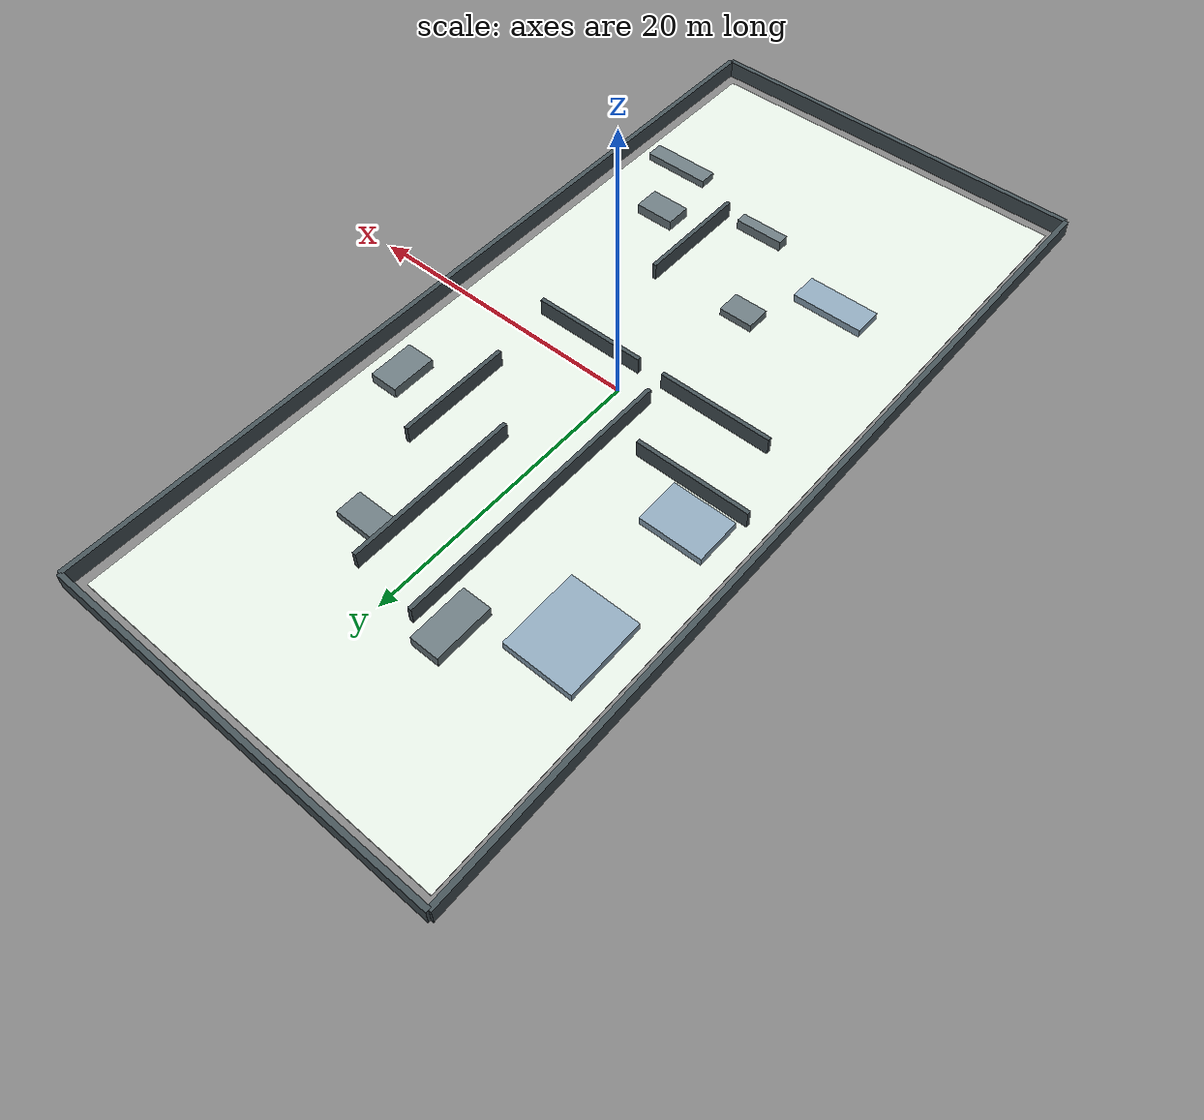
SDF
<?xml version="1.0" ?>
<sdf version="1.6">
  <world name="apartment_simple">
    <gravity>0 0 -9.8</gravity>
    <scene>
      <ambient>0.65 0.65 0.65 1</ambient>
      <background>0.78 0.84 0.88 1</background>
    </scene>
    <include>
      <uri>model://sun</uri>
    </include>
    <model name="apartment_simple_floor">
      <static>true</static>
      <pose>0.000 0.000 -0.025 0 0 0</pose>
      <link name="floor_link">
        <collision name="floor_collision">
          <geometry>
            <box><size>26.400 58.400 0.050</size></box>
          </geometry>
        </collision>
        <visual name="floor_visual">
          <geometry>
            <box><size>26.400 58.400 0.050</size></box>
          </geometry>
          <material><ambient>0.88 0.92 0.88 1</ambient><diffuse>0.88 0.92 0.88 1</diffuse></material>
        </visual>
      </link>
    </model>
    <model name="outer_north">
      <static>true</static>
      <pose>0.000 30.000 0.625 0 0 0</pose>
      <link name="outer_north_link">
        <collision name="outer_north_collision">
          <geometry>
            <box><size>28.000 0.350 1.250</size></box>
          </geometry>
        </collision>
        <visual name="outer_north_visual">
          <geometry>
            <box><size>28.000 0.350 1.250</size></box>
          </geometry>
          <material><ambient>0.27 0.32 0.34 1</ambient><diffuse>0.27 0.32 0.34 1</diffuse></material>
        </visual>
      </link>
    </model>
    <model name="outer_south">
      <static>true</static>
      <pose>0.000 -30.000 0.625 0 0 0</pose>
      <link name="outer_south_link">
        <collision name="outer_south_collision">
          <geometry>
            <box><size>28.000 0.350 1.250</size></box>
          </geometry>
        </collision>
        <visual name="outer_south_visual">
          <geometry>
            <box><size>28.000 0.350 1.250</size></box>
          </geometry>
          <material><ambient>0.27 0.32 0.34 1</ambient><diffuse>0.27 0.32 0.34 1</diffuse></material>
        </visual>
      </link>
    </model>
    <model name="outer_west">
      <static>true</static>
      <pose>-14.000 0.000 0.625 0 0 0</pose>
      <link name="outer_west_link">
        <collision name="outer_west_collision">
          <geometry>
            <box><size>0.350 60.000 1.250</size></box>
          </geometry>
        </collision>
        <visual name="outer_west_visual">
          <geometry>
            <box><size>0.350 60.000 1.250</size></box>
          </geometry>
          <material><ambient>0.27 0.32 0.34 1</ambient><diffuse>0.27 0.32 0.34 1</diffuse></material>
        </visual>
      </link>
    </model>
    <model name="outer_east">
      <static>true</static>
      <pose>14.000 0.000 0.625 0 0 0</pose>
      <link name="outer_east_link">
        <collision name="outer_east_collision">
          <geometry>
            <box><size>0.350 60.000 1.250</size></box>
          </geometry>
        </collision>
        <visual name="outer_east_visual">
          <geometry>
            <box><size>0.350 60.000 1.250</size></box>
          </geometry>
          <material><ambient>0.27 0.32 0.34 1</ambient><diffuse>0.27 0.32 0.34 1</diffuse></material>
        </visual>
      </link>
    </model>
    <model name="apt_living_bedroom_wall">
      <static>true</static>
      <pose>-2.000 9.500 0.625 0 0 0</pose>
      <link name="apt_living_bedroom_wall_link">
        <collision name="apt_living_bedroom_wall_collision">
          <geometry>
            <box><size>0.280 20.000 1.250</size></box>
          </geometry>
        </collision>
        <visual name="apt_living_bedroom_wall_visual">
          <geometry>
            <box><size>0.280 20.000 1.250</size></box>
          </geometry>
          <material><ambient>0.27 0.32 0.34 1</ambient><diffuse>0.27 0.32 0.34 1</diffuse></material>
        </visual>
      </link>
    </model>
    <model name="apt_living_kitchen_wall">
      <static>true</static>
      <pose>4.500 -13.000 0.625 0 0 0</pose>
      <link name="apt_living_kitchen_wall_link">
        <collision name="apt_living_kitchen_wall_collision">
          <geometry>
            <box><size>0.280 8.000 1.250</size></box>
          </geometry>
        </collision>
        <visual name="apt_living_kitchen_wall_visual">
          <geometry>
            <box><size>0.280 8.000 1.250</size></box>
          </geometry>
          <material><ambient>0.27 0.32 0.34 1</ambient><diffuse>0.27 0.32 0.34 1</diffuse></material>
        </visual>
      </link>
    </model>
    <model name="apt_hall_wall_left">
      <static>true</static>
      <pose>-5.800 -2.000 0.625 0 0 0</pose>
      <link name="apt_hall_wall_left_link">
        <collision name="apt_hall_wall_left_collision">
          <geometry>
            <box><size>8.000 0.280 1.250</size></box>
          </geometry>
        </collision>
        <visual name="apt_hall_wall_left_visual">
          <geometry>
            <box><size>8.000 0.280 1.250</size></box>
          </geometry>
          <material><ambient>0.27 0.32 0.34 1</ambient><diffuse>0.27 0.32 0.34 1</diffuse></material>
        </visual>
      </link>
    </model>
    <model name="apt_hall_wall_right">
      <static>true</static>
      <pose>4.000 -2.000 0.625 0 0 0</pose>
      <link name="apt_hall_wall_right_link">
        <collision name="apt_hall_wall_right_collision">
          <geometry>
            <box><size>8.000 0.280 1.250</size></box>
          </geometry>
        </collision>
        <visual name="apt_hall_wall_right_visual">
          <geometry>
            <box><size>8.000 0.280 1.250</size></box>
          </geometry>
          <material><ambient>0.27 0.32 0.34 1</ambient><diffuse>0.27 0.32 0.34 1</diffuse></material>
        </visual>
      </link>
    </model>
    <model name="apt_bath_wall">
      <static>true</static>
      <pose>7.000 7.000 0.625 0 0 0</pose>
      <link name="apt_bath_wall_link">
        <collision name="apt_bath_wall_collision">
          <geometry>
            <box><size>0.280 8.000 1.250</size></box>
          </geometry>
        </collision>
        <visual name="apt_bath_wall_visual">
          <geometry>
            <box><size>0.280 8.000 1.250</size></box>
          </geometry>
          <material><ambient>0.27 0.32 0.34 1</ambient><diffuse>0.27 0.32 0.34 1</diffuse></material>
        </visual>
      </link>
    </model>
    <model name="apt_study_wall">
      <static>true</static>
      <pose>2.800 13.000 0.625 0 0 0</pose>
      <link name="apt_study_wall_link">
        <collision name="apt_study_wall_collision">
          <geometry>
            <box><size>0.280 12.000 1.250</size></box>
          </geometry>
        </collision>
        <visual name="apt_study_wall_visual">
          <geometry>
            <box><size>0.280 12.000 1.250</size></box>
          </geometry>
          <material><ambient>0.27 0.32 0.34 1</ambient><diffuse>0.27 0.32 0.34 1</diffuse></material>
        </visual>
      </link>
    </model>
    <model name="apt_bedroom_divider">
      <static>true</static>
      <pose>-8.000 3.000 0.625 0 0 0</pose>
      <link name="apt_bedroom_divider_link">
        <collision name="apt_bedroom_divider_collision">
          <geometry>
            <box><size>8.000 0.280 1.250</size></box>
          </geometry>
        </collision>
        <visual name="apt_bedroom_divider_visual">
          <geometry>
            <box><size>8.000 0.280 1.250</size></box>
          </geometry>
          <material><ambient>0.27 0.32 0.34 1</ambient><diffuse>0.27 0.32 0.34 1</diffuse></material>
        </visual>
      </link>
    </model>
    <model name="apt_kitchen_counter">
      <static>true</static>
      <pose>10.000 -18.800 0.275 0 0 0</pose>
      <link name="apt_kitchen_counter_link">
        <collision name="apt_kitchen_counter_collision">
          <geometry>
            <box><size>4.800 1.200 0.550</size></box>
          </geometry>
        </collision>
        <visual name="apt_kitchen_counter_visual">
          <geometry>
            <box><size>4.800 1.200 0.550</size></box>
          </geometry>
          <material><ambient>0.42 0.48 0.50 1</ambient><diffuse>0.42 0.48 0.50 1</diffuse></material>
        </visual>
      </link>
    </model>
    <model name="apt_island">
      <static>true</static>
      <pose>8.000 -14.200 0.375 0 0 0</pose>
      <link name="apt_island_link">
        <collision name="apt_island_collision">
          <geometry>
            <box><size>2.800 1.800 0.750</size></box>
          </geometry>
        </collision>
        <visual name="apt_island_visual">
          <geometry>
            <box><size>2.800 1.800 0.750</size></box>
          </geometry>
          <material><ambient>0.42 0.48 0.50 1</ambient><diffuse>0.42 0.48 0.50 1</diffuse></material>
        </visual>
      </link>
    </model>
    <model name="apt_sofa">
      <static>true</static>
      <pose>-6.200 -14.200 0.275 0 0 0</pose>
      <link name="apt_sofa_link">
        <collision name="apt_sofa_collision">
          <geometry>
            <box><size>5.000 2.000 0.550</size></box>
          </geometry>
        </collision>
        <visual name="apt_sofa_visual">
          <geometry>
            <box><size>5.000 2.000 0.550</size></box>
          </geometry>
          <material><ambient>0.55 0.65 0.72 1</ambient><diffuse>0.55 0.65 0.72 1</diffuse></material>
        </visual>
      </link>
    </model>
    <model name="apt_tv_console">
      <static>true</static>
      <pose>1.500 -16.800 0.375 0 0 0</pose>
      <link name="apt_tv_console_link">
        <collision name="apt_tv_console_collision">
          <geometry>
            <box><size>3.500 0.800 0.750</size></box>
          </geometry>
        </collision>
        <visual name="apt_tv_console_visual">
          <geometry>
            <box><size>3.500 0.800 0.750</size></box>
          </geometry>
          <material><ambient>0.42 0.48 0.50 1</ambient><diffuse>0.42 0.48 0.50 1</diffuse></material>
        </visual>
      </link>
    </model>
    <model name="apt_coffee_table">
      <static>true</static>
      <pose>-2.000 -10.000 0.275 0 0 0</pose>
      <link name="apt_coffee_table_link">
        <collision name="apt_coffee_table_collision">
          <geometry>
            <box><size>2.400 1.700 0.550</size></box>
          </geometry>
        </collision>
        <visual name="apt_coffee_table_visual">
          <geometry>
            <box><size>2.400 1.700 0.550</size></box>
          </geometry>
          <material><ambient>0.42 0.48 0.50 1</ambient><diffuse>0.42 0.48 0.50 1</diffuse></material>
        </visual>
      </link>
    </model>
    <model name="apt_bed_main">
      <static>true</static>
      <pose>-9.200 14.800 0.275 0 0 0</pose>
      <link name="apt_bed_main_link">
        <collision name="apt_bed_main_collision">
          <geometry>
            <box><size>4.800 5.500 0.550</size></box>
          </geometry>
        </collision>
        <visual name="apt_bed_main_visual">
          <geometry>
            <box><size>4.800 5.500 0.550</size></box>
          </geometry>
          <material><ambient>0.55 0.65 0.72 1</ambient><diffuse>0.55 0.65 0.72 1</diffuse></material>
        </visual>
      </link>
    </model>
    <model name="apt_bed_child">
      <static>true</static>
      <pose>-9.400 5.200 0.275 0 0 0</pose>
      <link name="apt_bed_child_link">
        <collision name="apt_bed_child_collision">
          <geometry>
            <box><size>4.400 3.200 0.550</size></box>
          </geometry>
        </collision>
        <visual name="apt_bed_child_visual">
          <geometry>
            <box><size>4.400 3.200 0.550</size></box>
          </geometry>
          <material><ambient>0.55 0.65 0.72 1</ambient><diffuse>0.55 0.65 0.72 1</diffuse></material>
        </visual>
      </link>
    </model>
    <model name="apt_desk">
      <static>true</static>
      <pose>4.500 16.500 0.275 0 0 0</pose>
      <link name="apt_desk_link">
        <collision name="apt_desk_collision">
          <geometry>
            <box><size>3.200 1.800 0.550</size></box>
          </geometry>
        </collision>
        <visual name="apt_desk_visual">
          <geometry>
            <box><size>3.200 1.800 0.550</size></box>
          </geometry>
          <material><ambient>0.42 0.48 0.50 1</ambient><diffuse>0.42 0.48 0.50 1</diffuse></material>
        </visual>
      </link>
    </model>
    <model name="apt_bath_fixture">
      <static>true</static>
      <pose>11.000 7.500 0.375 0 0 0</pose>
      <link name="apt_bath_fixture_link">
        <collision name="apt_bath_fixture_collision">
          <geometry>
            <box><size>2.000 3.200 0.750</size></box>
          </geometry>
        </collision>
        <visual name="apt_bath_fixture_visual">
          <geometry>
            <box><size>2.000 3.200 0.750</size></box>
          </geometry>
          <material><ambient>0.42 0.48 0.50 1</ambient><diffuse>0.42 0.48 0.50 1</diffuse></material>
        </visual>
      </link>
    </model>
    <model name="apt_closet">
      <static>true</static>
      <pose>-4.000 18.500 0.375 0 0 0</pose>
      <link name="apt_closet_link">
        <collision name="apt_closet_collision">
          <geometry>
            <box><size>2.000 4.000 0.750</size></box>
          </geometry>
        </collision>
        <visual name="apt_closet_visual">
          <geometry>
            <box><size>2.000 4.000 0.750</size></box>
          </geometry>
          <material><ambient>0.42 0.48 0.50 1</ambient><diffuse>0.42 0.48 0.50 1</diffuse></material>
        </visual>
      </link>
    </model>
  </world>
</sdf>
